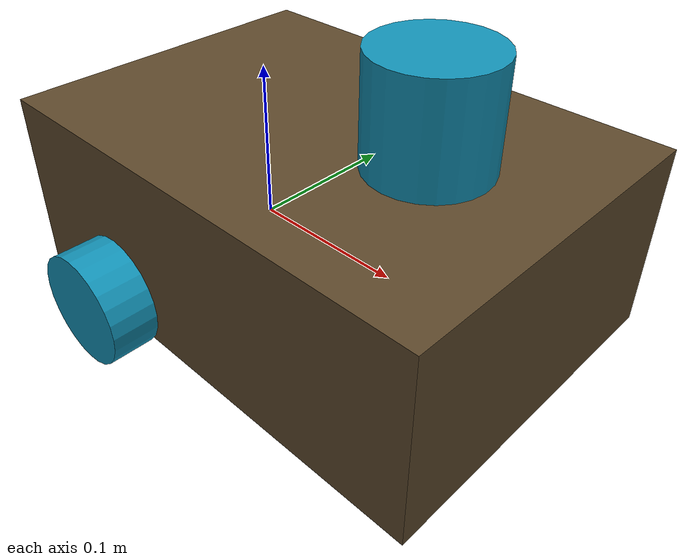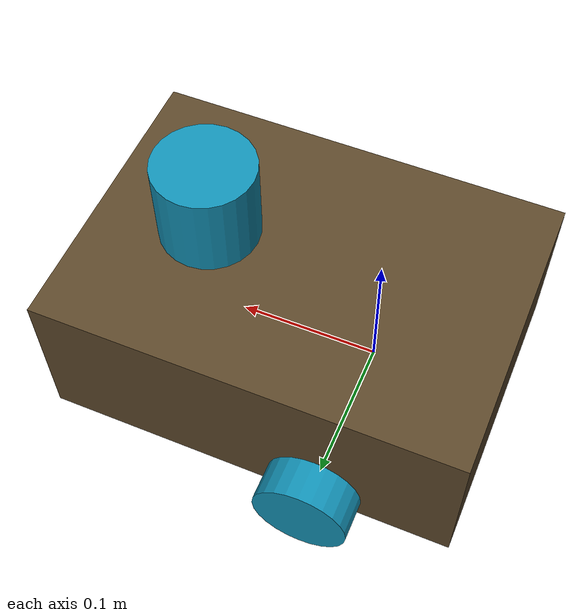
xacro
<?xml version="1.0"?>
<robot xmlns:xacro="http://www.ros.org/wiki/xacro"  name="">

  <xacro:arg name="prefix" default="diffdrive_robot" />

  <xacro:include filename="$(find diffdrive_arduino)/urdf/robot_core.xacro" />

  <!-- Import diffbot ros2_control description -->
  <xacro:include filename="$(find diffdrive_arduino)/ros2_control/diffbot.ros2_control.xacro" />

  <xacro:diffbot prefix="$(arg prefix)" />

  <xacro:diffbot_ros2_control
    name="DiffBot" prefix="$(arg prefix)" />

</robot>

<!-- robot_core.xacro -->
<robot xmlns:xacro="http://www.ros.org/wiki/xacro">

    <xacro:macro name="diffbot" params="prefix">

        <xacro:include filename="intertial_macros.xacro"/>

        <material name="mdf">
            <color rgba="0.36 0.282 0.168 1" />
        </material>

        <material name="wheel">
            <color rgba="0.071 0.57 0.71 1" />
        </material>

        <material name="mechanum">
            <color rgba="0.0 0.0 0.0 1" />
        </material>

        <link name="base_link">
        </link>

        <joint name="base_footprint_joint" type="fixed">
            <parent link="base_link"/>
            <child link="base_footprint"/>
            <origin xyz="0 0 0" rpy="0 0 0"/>
        </joint>

        <link name="base_footprint">
        </link>

        <joint name="chassis_joint" type="fixed">
            <parent link="base_link" />
            <child link="chassis" />
            <origin xyz = "-0.095 0 0" />
        </joint>

        <link name="chassis">
            <visual>
                <origin xyz="0.1485 0 0.025" />
                <geometry>
                    <box size="0.297 0.21 0.115" />
                </geometry>
                <material name="mdf" />
            </visual>
            <collision>
                <origin xyz="0.1485 0 0.025" />
                <geometry>
                    <box size="0.297 0.21 0.115" />
                </geometry>
            </collision>
            <xacro:inertial_box mass="0.5" x="0.297" y="0.21" z="0.115">
                <origin xyz="0.1485 0 0.025" rpy="0 0 0"/>
            </xacro:inertial_box>
        </link>

        <joint name="left_wheel_joint" type="continuous">
            <parent link="base_link"/>
            <child link="left_wheel"/>
            <origin xyz="0 0.125 0" rpy="-${pi/2} 0 0"/>
            <axis xyz="0 0 -1"/>
        </joint>

        <link name="left_wheel">
            <visual>
                <geometry>
                    <cylinder radius="0.033" length="0.027" />
                </geometry>
                <material name="wheel"/>
            </visual>
            <collision>
                <geometry>
                    <sphere radius="0.033"/>
                </geometry>
            </collision>
            <xacro:inertial_cylinder mass="0.1" length="0.027" radius="0.033">
                <origin xyz="0 0 0" rpy="0 0 0"/>
            </xacro:inertial_cylinder>
        </link>

        <gazebo reference="left_wheel">
            <material>Gazebo/Blue</material>
        </gazebo>

        <joint name="right_wheel_joint" type="continuous">
            <parent link="base_link"/>
            <child link="right_wheel"/>
            <origin xyz="0 -0.125 0" rpy="${pi/2} 0 0"/>
            <axis xyz="0 0 -1"/>
        </joint>

        <link name="right_wheel">
            <visual>
                <geometry>
                    <cylinder radius="0.033" length="0.027" />
                </geometry>
                <material name="wheel"/>
            </visual>
            <collision>
                <geometry>
                    <sphere radius="0.033" />
                </geometry>
            </collision>
            <xacro:inertial_cylinder mass="0.1" length="0.027" radius="0.033">
                <origin xyz="0 0 0" rpy="0 0 0"/>
            </xacro:inertial_cylinder>
        </link>

        <joint name="laser_joint" type="fixed">
            <parent link="chassis"/>
            <child link = "laser_frame"/>
            <origin xyz="0.217 0.0 0.115" rpy="0 0 3.14" />
        </joint>

        <link name="laser_frame">
            <visual>
                <geometry>
                    <cylinder radius="0.035" length="0.063" />
                </geometry>
                <material name="wheel"/>
            </visual>
            <collision>
                <geometry>
                    <cylinder radius="0.035" length="0.067" />
                </geometry>
            </collision>
            <xacro:inertial_cylinder mass="0.2" length="0.067" radius="0.035">
                <origin xyz="0 0 0" rpy="0 0 0"/>
            </xacro:inertial_cylinder>
        </link>

        <joint name="mechanum_wheel_joint" type="fixed">
            <parent link="chassis"/>
            <child link="mechanum_wheel"/>
            <origin xyz="0.26 0 0"/>
        </joint>

        <link name="mechanum_wheel">
            <visual>
                <geometry>
                    <sphere radius="0.033"/>
                </geometry>
                <material name="mechanum"/>
            </visual>
            <collision>
                <geometry>
                    <sphere radius="0.033"/>
                </geometry>
            </collision>
            <xacro:inertial_sphere mass="0.1" radius="0.033">
                <origin xyz="0 0 0" rpy="0 0 0"/>
            </xacro:inertial_sphere>
        </link>
    </xacro:macro>

</robot>
